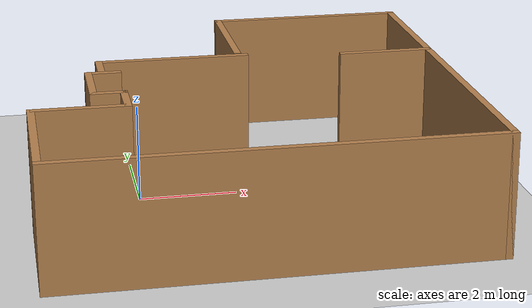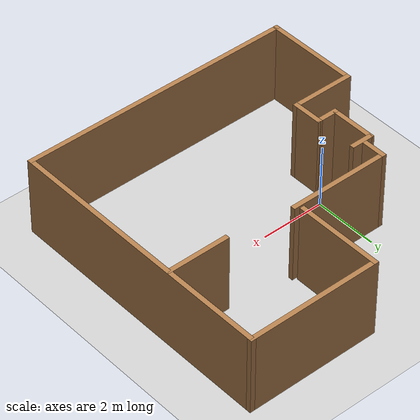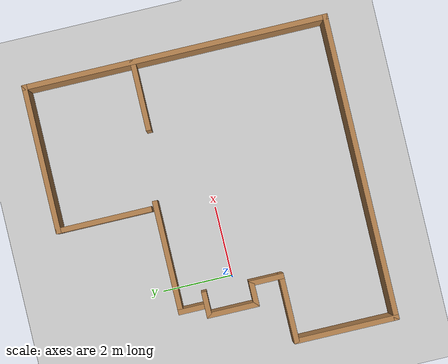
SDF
<sdf version="1.7">
 <world name="default">
  <light name="sun" type="directional">
   <pose>0 0 10 0 -0 0</pose>
   <diffuse>0.8 0.8 0.8 1</diffuse>
   <specular>0.2 0.2 0.2 1</specular>
   <attenuation>
    <range>1000</range>
    <constant>0.9</constant>
    <linear>0.01</linear>
    <quadratic>0.001</quadratic>
   </attenuation>
   <direction>-0.5 0.1 -0.9</direction>
   <spot><inner_angle>0</inner_angle><outer_angle>0</outer_angle><falloff>0</falloff></spot>
  </light>
  <model name="ground_plane">
   <static>1</static>
   <link name="link">
    <collision name="collision">
     <geometry><plane><normal>0 0 1</normal><size>100 100</size></plane></geometry>
     <surface>
      <contact><collide_bitmask>65535</collide_bitmask></contact>
      <friction><ode><mu>100</mu><mu2>50</mu2></ode></friction>
     </surface>
    </collision>
    <visual name="visual">
     <cast_shadows>0</cast_shadows>
     <geometry><plane><normal>0 0 1</normal><size>100 100</size></plane></geometry>
     <material>
      <script><uri>file://media/materials/scripts/gazebo.material</uri><name>Gazebo/Grey</name></script>
     </material>
    </visual>
   </link>
  </model>
  <gravity>0 0 -9.8</gravity>
  <magnetic_field>6e-06 2.3e-05 -4.2e-05</magnetic_field>
  <atmosphere type="adiabatic"/>
  <physics type="ode">
   <max_step_size>0.001</max_step_size>
   <real_time_factor>1</real_time_factor>
   <real_time_update_rate>1000</real_time_update_rate>
  </physics>
  <scene><ambient>0.4 0.4 0.4 1</ambient><background>0.7 0.7 0.7 1</background><shadows>1</shadows></scene>
  <spherical_coordinates>
   <surface_model>EARTH_WGS84</surface_model>
   <latitude_deg>0</latitude_deg>
   <longitude_deg>0</longitude_deg>
   <elevation>0</elevation>
   <heading_deg>0</heading_deg>
  </spherical_coordinates>
  <model name="Untitled">
   <pose>2.1551 0.117928 0 0 -0 0</pose>
   <link name="Wall_0">
    <collision name="Wall_0_Collision">
     <geometry><box><size>1.5 0.15 2.5</size></box></geometry>
     <pose>0 0 1.25 0 -0 0</pose>
    </collision>
    <visual name="Wall_0_Visual">
     <pose>0 0 1.25 0 -0 0</pose>
     <geometry><box><size>1.5 0.15 2.5</size></box></geometry>
     <material>
      <script><uri>file://media/materials/scripts/gazebo.material</uri><name>Gazebo/Wood</name></script>
      <ambient>1 1 1 1</ambient>
     </material>
     <meta><layer>0</layer></meta>
    </visual>
    <pose>-3.05 0.075 0 0 -0 -1.5708</pose>
   </link>
   <link name="Wall_10">
    <collision name="Wall_10_Collision">
     <geometry><box><size>3.25 0.15 2.5</size></box></geometry>
     <pose>0 0 1.25 0 -0 0</pose>
    </collision>
    <visual name="Wall_10_Visual">
     <pose>0 0 1.25 0 -0 0</pose>
     <geometry><box><size>3.25 0.15 2.5</size></box></geometry>
     <material>
      <script><uri>file://media/materials/scripts/gazebo.material</uri><name>Gazebo/Wood</name></script>
      <ambient>1 1 1 1</ambient>
     </material>
     <meta><layer>0</layer></meta>
    </visual>
    <pose>-1.2235 1.4995 0 0 -0 0</pose>
   </link>
   <link name="Wall_12">
    <collision name="Wall_12_Collision">
     <geometry><box><size>0.75 0.15 2.5</size></box></geometry>
     <pose>0 0 1.25 0 -0 0</pose>
    </collision>
    <visual name="Wall_12_Visual">
     <pose>0 0 1.25 0 -0 0</pose>
     <geometry><box><size>0.75 0.15 2.5</size></box></geometry>
     <material>
      <script><uri>file://media/materials/scripts/gazebo.material</uri><name>Gazebo/Wood</name></script>
      <ambient>1 1 1 1</ambient>
     </material>
     <meta><layer>0</layer></meta>
    </visual>
    <pose>-2.7735 1.1995 0 0 -0 -1.5708</pose>
   </link>
   <link name="Wall_15">
    <collision name="Wall_15_Collision">
     <geometry><box><size>1 0.15 2.5</size></box></geometry>
     <pose>0 0 1.25 0 -0 0</pose>
    </collision>
    <visual name="Wall_15_Visual">
     <pose>0 0 1.25 0 -0 0</pose>
     <geometry><box><size>1 0.15 2.5</size></box></geometry>
     <material>
      <script><uri>file://media/materials/scripts/gazebo.material</uri><name>Gazebo/Wood</name></script>
      <ambient>1 1 1 1</ambient>
     </material>
     <meta><layer>0</layer></meta>
    </visual>
    <pose>-2.45 -1.025 0 0 -0 -1.5708</pose>
   </link>
   <link name="Wall_16">
    <collision name="Wall_16_Collision">
     <geometry><box><size>2 0.15 2.5</size></box></geometry>
     <pose>0 0 1.25 0 -0 0</pose>
    </collision>
    <visual name="Wall_16_Visual">
     <pose>0 0 1.25 0 -0 0</pose>
     <geometry><box><size>2 0.15 2.5</size></box></geometry>
     <material>
      <script><uri>file://media/materials/scripts/gazebo.material</uri><name>Gazebo/Wood</name></script>
      <ambient>1 1 1 1</ambient>
     </material>
     <meta><layer>0</layer></meta>
    </visual>
    <pose>-3.375 -1.45 0 0 -0 3.14159</pose>
   </link>
   <link name="Wall_18">
    <collision name="Wall_18_Collision">
     <geometry><box><size>3 0.15 2.5</size></box></geometry>
     <pose>0 0 1.25 0 -0 0</pose>
    </collision>
    <visual name="Wall_18_Visual">
     <pose>0 0 1.25 0 -0 0</pose>
     <geometry><box><size>3 0.15 2.5</size></box></geometry>
     <material>
      <script><uri>file://media/materials/scripts/gazebo.material</uri><name>Gazebo/Wood</name></script>
      <ambient>1 1 1 1</ambient>
     </material>
     <meta><layer>0</layer></meta>
    </visual>
    <pose>-4.3 -2.875 0 0 -0 -1.5708</pose>
   </link>
   <link name="Wall_19">
    <collision name="Wall_19_Collision">
     <geometry><box><size>8.75 0.15 2.5</size></box></geometry>
     <pose>0 0 1.25 0 -0 0</pose>
    </collision>
    <visual name="Wall_19_Visual">
     <pose>0 0 1.25 0 -0 0</pose>
     <geometry><box><size>8.75 0.15 2.5</size></box></geometry>
     <material>
      <script><uri>file://media/materials/scripts/gazebo.material</uri><name>Gazebo/Wood</name></script>
      <ambient>1 1 1 1</ambient>
     </material>
     <meta><layer>0</layer></meta>
    </visual>
    <pose>-0 -4.3 0 0 -0 0</pose>
   </link>
   <link name="Wall_2">
    <collision name="Wall_2_Collision">
     <geometry><box><size>0.75 0.15 2.5</size></box></geometry>
     <pose>0 0 1.25 0 -0 0</pose>
    </collision>
    <visual name="Wall_2_Visual">
     <pose>0 0 1.25 0 -0 0</pose>
     <geometry><box><size>0.75 0.15 2.5</size></box></geometry>
     <material>
      <script><uri>file://media/materials/scripts/gazebo.material</uri><name>Gazebo/Wood</name></script>
      <ambient>1 1 1 1</ambient>
     </material>
     <meta><layer>0</layer></meta>
    </visual>
    <pose>-2.75 -0.6 0 0 -0 0</pose>
   </link>
   <link name="Wall_21">
    <collision name="Wall_21_Collision">
     <geometry><box><size>8.75 0.15 2.5</size></box></geometry>
     <pose>0 0 1.25 0 -0 0</pose>
    </collision>
    <visual name="Wall_21_Visual">
     <pose>0 0 1.25 0 -0 0</pose>
     <geometry><box><size>8.75 0.15 2.5</size></box></geometry>
     <material>
      <script><uri>file://media/materials/scripts/gazebo.material</uri><name>Gazebo/Wood</name></script>
      <ambient>1 1 1 1</ambient>
     </material>
     <meta><layer>0</layer></meta>
    </visual>
    <pose>4.3 -0 0 0 -0 1.5708</pose>
   </link>
   <link name="Wall_22">
    <collision name="Wall_22_Collision">
     <geometry><box><size>4.25 0.15 2.5</size></box></geometry>
     <pose>0 0 1.25 0 -0 0</pose>
    </collision>
    <visual name="Wall_22_Visual">
     <pose>0 0 1.25 0 -0 0</pose>
     <geometry><box><size>4.25 0.15 2.5</size></box></geometry>
     <material>
      <script><uri>file://media/materials/scripts/gazebo.material</uri><name>Gazebo/Wood</name></script>
      <ambient>1 1 1 1</ambient>
     </material>
     <meta><layer>0</layer></meta>
    </visual>
    <pose>2.25 4.3 0 0 -0 3.14159</pose>
   </link>
   <link name="Wall_23">
    <collision name="Wall_23_Collision">
     <geometry><box><size>2.75 0.15 2.5</size></box></geometry>
     <pose>0 0 1.25 0 -0 0</pose>
    </collision>
    <visual name="Wall_23_Visual">
     <pose>0 0 1.25 0 -0 0</pose>
     <geometry><box><size>2.75 0.15 2.5</size></box></geometry>
     <material>
      <script><uri>file://media/materials/scripts/gazebo.material</uri><name>Gazebo/Wood</name></script>
      <ambient>1 1 1 1</ambient>
     </material>
     <meta><layer>0</layer></meta>
    </visual>
    <pose>0.2 3 0 0 -0 -1.5708</pose>
   </link>
   <link name="Wall_25">
    <collision name="Wall_25_Collision">
     <geometry><box><size>2 0.15 2.5</size></box></geometry>
     <pose>0 0 1.25 0 -0 0</pose>
    </collision>
    <visual name="Wall_25_Visual">
     <pose>0 0 1.25 0 -0 0</pose>
     <geometry><box><size>2 0.15 2.5</size></box></geometry>
     <material>
      <script><uri>file://media/materials/scripts/gazebo.material</uri><name>Gazebo/Wood</name></script>
      <ambient>1 1 1 1</ambient>
     </material>
     <meta><layer>0</layer></meta>
    </visual>
    <pose>3.34624 1.2084 0 0 -0 3.14159</pose>
   </link>
   <link name="Wall_4">
    <collision name="Wall_4_Collision">
     <geometry><box><size>0.75 0.15 2.5</size></box></geometry>
     <pose>0 0 1.25 0 -0 0</pose>
    </collision>
    <visual name="Wall_4_Visual">
     <pose>0 0 1.25 0 -0 0</pose>
     <geometry><box><size>0.75 0.15 2.5</size></box></geometry>
     <material>
      <script><uri>file://media/materials/scripts/gazebo.material</uri><name>Gazebo/Wood</name></script>
      <ambient>1 1 1 1</ambient>
     </material>
     <meta><layer>0</layer></meta>
    </visual>
    <pose>-2.75 0.75 0 0 -0 0</pose>
   </link>
   <static>1</static>
  </model>
 </world>
</sdf>
